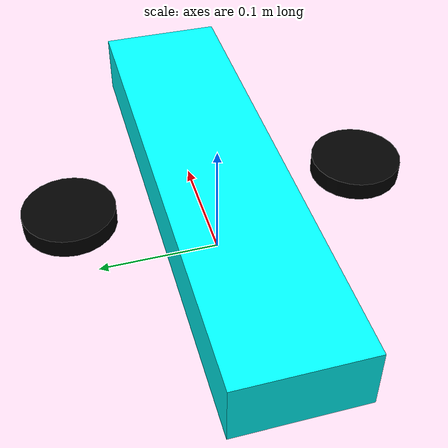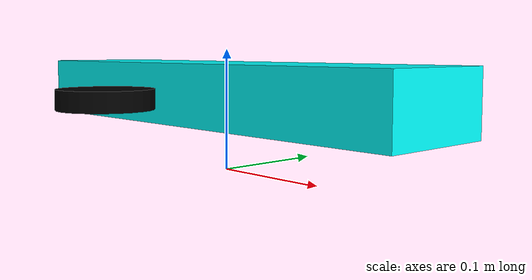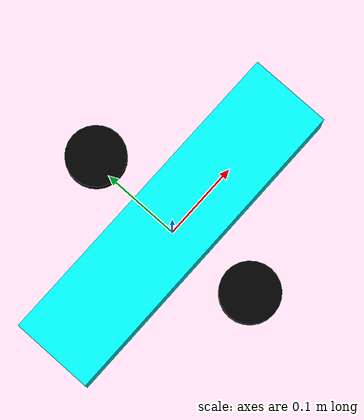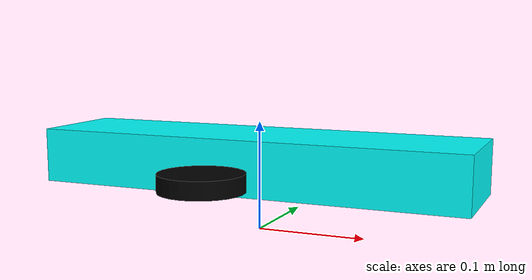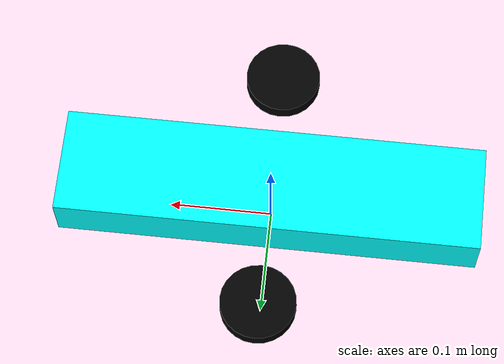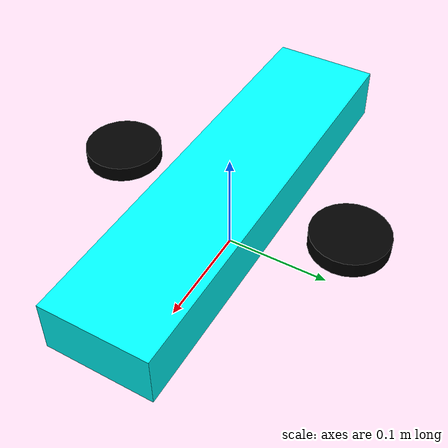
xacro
<?xml version="1.0"?>
<robot xmlns:xacro="http://www.ros.org/wiki/xacro" name="rushbott">

    <xacro:include filename="common_properties.urdf.xacro"/>
    <xacro:include filename="wheel.urdf.xacro"/>

    <!-- Mechanical properties -->
    <xacro:property name="body_mass"               value="2.300" />
    <xacro:property name="body_length"             value="${40*cm2m}" />
    <xacro:property name="body_width"              value="${10*cm2m}" />
    <xacro:property name="body_height"             value="${5*cm2m}" />

    <xacro:property name="wheel_height"            value="${-2.75*cm2m}" />
    <xacro:property name="distance_between_wheels" value="${23.3*cm2m}" />

    <xacro:property name="base_link_z_offset"      value="${6.42*cm2m}"/>

    <!-- Dummy link -->
    <link name="base_footprint"/>

    <!-- Base link -->
    <joint name="base_footprint_to_base_link=" type="fixed">
        <parent link="base_footprint"/>
        <child link="base_link"/>
    </joint>

    <link name="base_link">
        <visual>
            <origin xyz="0 0 ${base_link_z_offset}" rpy="0 0 0"/>
            <geometry>
                <box size="${body_length} ${body_width} ${body_height}"/>
            </geometry>
            <xacro:insert_block name="material_cyan"/>
        </visual>
        <collision name="create3_base_collision">
            <origin xyz="0 0 ${base_link_z_offset}" rpy="0 0 0"/>
            <geometry>
                <box size="${body_length} ${body_width} ${body_height}"/>
            </geometry>
        </collision>
        <xacro:inertial_cuboid_with_pose mass="${body_mass}" x="${body_length}" y="${body_width}" z="${body_height}">
            <origin xyz="0 0 ${base_link_z_offset}"/>
        </xacro:inertial_cuboid_with_pose>
    </link>

    <!-- Wheels -->
    <xacro:wheel name="left_wheel" parent_link="base_link">
        <origin xyz="0 ${distance_between_wheels/2} ${base_link_z_offset}" rpy="0 0 0"/>
    </xacro:wheel>

    <xacro:wheel name="right_wheel" parent_link="base_link">
        <origin xyz="0 ${-distance_between_wheels/2} ${base_link_z_offset}" rpy="0 0 0"/>
    </xacro:wheel>

</robot>

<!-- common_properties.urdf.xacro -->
<robot xmlns:xacro='http://www.ros.org/wiki/xacro'>

    <!-- Inertial blocks -->
    <xacro:macro name='inertial_cuboid_with_pose' params='mass x y z *origin'>
        <inertial>
            <mass value='${mass}' />
            <xacro:insert_block name='origin'/>
            <inertia ixx='${(1/12) * mass * (y*y + z*z)}' ixy='0.0' ixz='0.0'
            iyy='${(1/12) * mass * (x*x + z*z)}' iyz='0.0'
            izz='${(1/12) * mass * (x*x + y*y)}' />
        </inertial>
    </xacro:macro>

    <xacro:macro name='inertial_cuboid' params='mass x y z'>
        <xacro:inertial_cuboid_with_pose mass='${mass}' x='${x}' y='${y}' z='${z}'>
            <origin xyz='0 0 0' />
        </xacro:inertial_cuboid_with_pose>
    </xacro:macro>

    <xacro:macro name='inertial_cylinder_with_pose' params='mass radius length *origin'>
        <inertial>
            <xacro:insert_block name='origin'/>
            <mass value='${mass}' />
            <inertia ixx='${(1/12) * mass * (3*radius*radius + length*length)}' ixy='0.0' ixz='0.0'
            iyy='${(1/12) * mass * (3*radius*radius + length*length)}' iyz='0.0'
            izz='${(1/2) * mass * (radius*radius)}' />
        </inertial>
    </xacro:macro>

    <xacro:macro name='inertial_cylinder' params='mass radius length'>
        <xacro:inertial_cylinder_with_pose mass='${mass}' radius='${radius}' length='${length}'>
            <origin xyz='0 0 0' />
        </xacro:inertial_cylinder_with_pose>
    </xacro:macro>

    <xacro:macro name='inertial_sphere' params='mass radius'>
        <inertial>
            <mass value='${mass}' />
            <inertia ixx='${(2/5) * mass * radius * radius}' ixy='0.0' ixz='0.0'
                        iyy='${(2/5) * mass * radius * radius}' iyz='0.0'
                        izz='${(2/5) * mass * radius * radius}' />
        </inertial>
    </xacro:macro>

    <xacro:macro name='inertial_dummy'>
        <xacro:inertial_cuboid mass='0.01' x='0.01' y='0.01' z='0.01'/>
    </xacro:macro>

    <!-- Conversions -->
    <xacro:property name='cm2m'    value='${1/100.0}'/>
    <xacro:property name='mm2m'    value='${1/1000.0}'/>
    <xacro:property name='in2m'    value='0.0254'/>
    <xacro:property name='deg2rad' value='${pi/180.0}'/>

    <!-- Material colors -->
    <xacro:property name='material_black'>
        <material name='black'>
            <color rgba='0 0 0 1'/>
        </material>
    </xacro:property>

    <xacro:property name='material_red'>
        <material name='red'>
            <color rgba='1 0 0 1'/>
        </material>
    </xacro:property>

    <xacro:property name='material_cyan'>
        <material name='cyan'>
            <color rgba='0 1 1 1'/>
        </material>
    </xacro:property>

    <xacro:property name = "material_orange">
        <material name="orange">
            <color rgba="1.0 0.65 0.0 1.0"/>
        </material>
    </xacro:property>

    <xacro:property name = "material_pink">
        <material name="pink">
            <color rgba="1.0 0.75 0.8 1.0"/>
        </material>
    </xacro:property>

    <xacro:property name='material_white'>
        <material name='white'>
            <color rgba='1 1 1 1'/>
        </material>
    </xacro:property>
</robot>

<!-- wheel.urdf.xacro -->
<robot xmlns:xacro="http://www.ros.org/wiki/xacro">

<xacro:macro name="wheel" params="name parent_link *origin">

    <xacro:property name="mass"   value="0.2" />
    <xacro:property name="radius" value="${3.575*cm2m}" />
    <xacro:property name="width"  value="${1.5*cm2m}" />

    <xacro:property name="wheel_link_name"  value="${name}_wheel"/>
    <xacro:property name="wheel_joint_name" value="${wheel_link_name}_joint"/>

    <joint name="${wheel_joint_name}" type="continuous">
        <parent link="${parent_link}"/>
        <child link="${wheel_link_name}"/>
        <xacro:insert_block name="origin"/>
        <axis xyz="0 0 1"/>
    </joint>

    <link name="${wheel_link_name}">
        <visual>
            <geometry>
                <cylinder length="${width}" radius="${radius}"/>
            </geometry>
            <xacro:insert_block name="material_black"/>
        </visual>
        <collision>
            <geometry>
                <cylinder length="${width}" radius="${radius}"/>
            </geometry>
        </collision>
        <xacro:inertial_cylinder mass="${mass}" radius="${radius}"
            length="${width}"/>
    </link>

</xacro:macro>
</robot>
